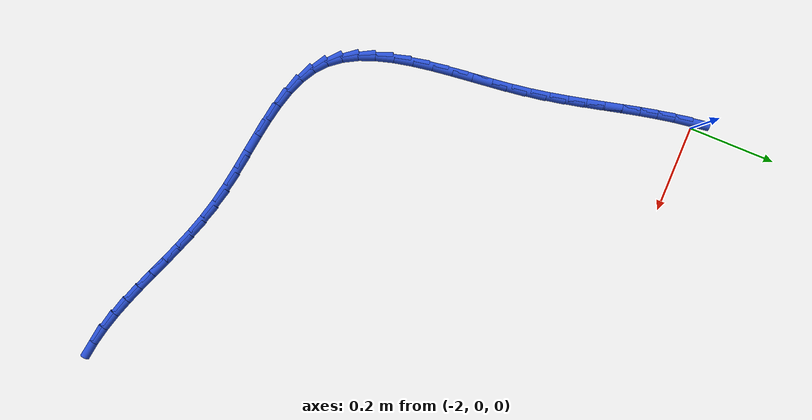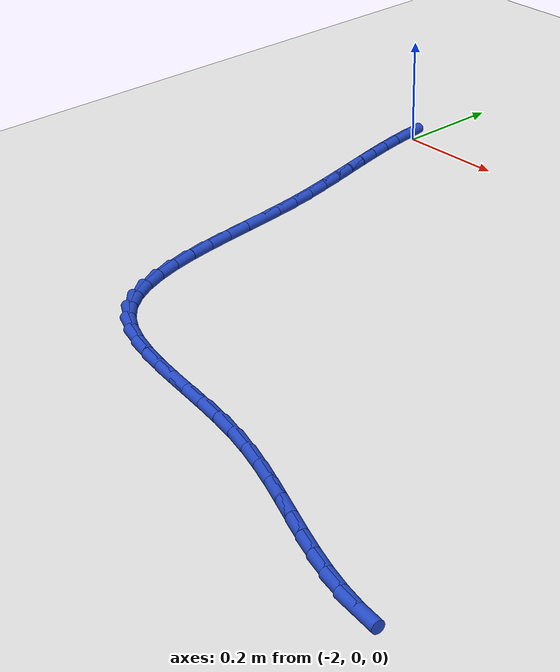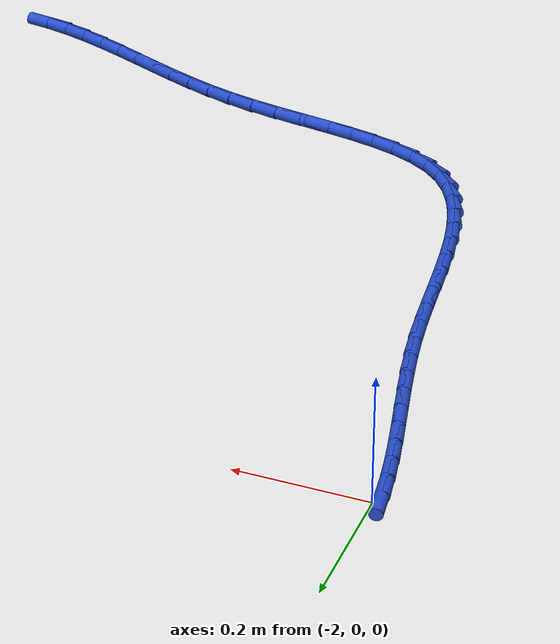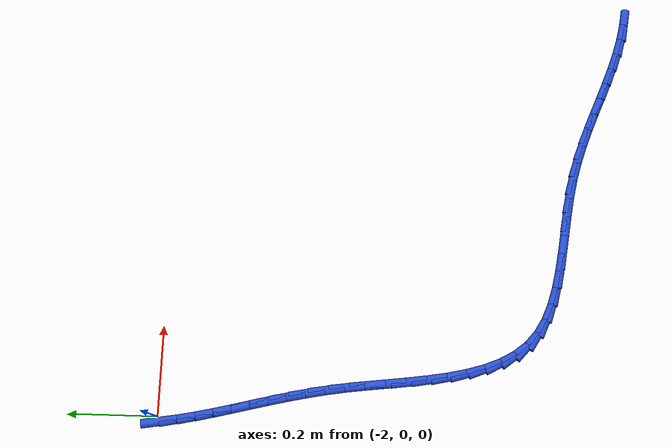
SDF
<sdf version="1.6">
 <world name="default">
  <model name="ground_plane">
   <static>1</static>
   <link name="link">
    <collision name="collision">
     <geometry><plane><normal>0 0 1</normal><size>100 100</size></plane></geometry>
     <surface><friction><ode><mu>100</mu><mu2>50</mu2></ode></friction></surface>
    </collision>
    <visual name="visual">
     <cast_shadows>0</cast_shadows>
     <geometry><plane><normal>0 0 1</normal><size>100 100</size></plane></geometry>
     <material>
      <script><uri>file://media/materials/scripts/gazebo.material</uri><name>Gazebo/WhiteGlow</name></script>
     </material>
    </visual>
   </link>
  </model>
  <model name="line">
   <link name="link_80">
    <pose>-2.0107670123664168 -0.005639571225354064 0.01 0 1.57 -1.4206485619733698</pose>
    <collision name="collision">
     <geometry><cylinder><radius>0.01</radius><length>0.08</length></cylinder></geometry>
    </collision>
    <visual name="visual">
     <material>
      <script><name>Gazebo/Blue</name><uri>file://media/materials/scripts/gazebo.material</uri></script>
     </material>
     <geometry><cylinder><radius>0.01</radius><length>0.08</length></cylinder></geometry>
    </visual>
   </link>
   <link name="link_81">
    <pose>-2.0048594719169923 -0.04468830233156936 0.01 0 1.57 -1.3846988196718093</pose>
    <collision name="collision">
     <geometry><cylinder><radius>0.01</radius><length>0.08</length></cylinder></geometry>
    </collision>
    <visual name="visual">
     <material>
      <script><name>Gazebo/Blue</name><uri>file://media/materials/scripts/gazebo.material</uri></script>
     </material>
     <geometry><cylinder><radius>0.01</radius><length>0.08</length></cylinder></geometry>
    </visual>
   </link>
   <link name="link_82">
    <pose>-1.997506854845853 -0.08374063173101816 0.01 0 1.57 -1.3582474626516305</pose>
    <collision name="collision">
     <geometry><cylinder><radius>0.01</radius><length>0.08</length></cylinder></geometry>
    </collision>
    <visual name="visual">
     <material>
      <script><name>Gazebo/Blue</name><uri>file://media/materials/scripts/gazebo.material</uri></script>
     </material>
     <geometry><cylinder><radius>0.01</radius><length>0.08</length></cylinder></geometry>
    </visual>
   </link>
   <link name="link_83">
    <pose>-1.989045722222081 -0.12294729131357554 0.01 0 1.57 -1.3412359398261178</pose>
    <collision name="collision">
     <geometry><cylinder><radius>0.01</radius><length>0.08</length></cylinder></geometry>
    </collision>
    <visual name="visual">
     <material>
      <script><name>Gazebo/Blue</name><uri>file://media/materials/scripts/gazebo.material</uri></script>
     </material>
     <geometry><cylinder><radius>0.01</radius><length>0.08</length></cylinder></geometry>
    </visual>
   </link>
   <link name="link_84">
    <pose>-1.9798126351147547 -0.16245901296911858 0.01 0 1.57 -1.333447600823755</pose>
    <collision name="collision">
     <geometry><cylinder><radius>0.01</radius><length>0.08</length></cylinder></geometry>
    </collision>
    <visual name="visual">
     <material>
      <script><name>Gazebo/Blue</name><uri>file://media/materials/scripts/gazebo.material</uri></script>
     </material>
     <geometry><cylinder><radius>0.01</radius><length>0.08</length></cylinder></geometry>
    </visual>
   </link>
   <link name="link_85">
    <pose>-1.9701441545929568 -0.2024265285875237 0.01 0 1.57 -1.3345629921398494</pose>
    <collision name="collision">
     <geometry><cylinder><radius>0.01</radius><length>0.08</length></cylinder></geometry>
    </collision>
    <visual name="visual">
     <material>
      <script><name>Gazebo/Blue</name><uri>file://media/materials/scripts/gazebo.material</uri></script>
     </material>
     <geometry><cylinder><radius>0.01</radius><length>0.08</length></cylinder></geometry>
    </visual>
   </link>
   <link name="link_86">
    <pose>-1.9603768417257665 -0.24300057005866732 0.01 0 1.57 -1.3441906305630849</pose>
    <collision name="collision">
     <geometry><cylinder><radius>0.01</radius><length>0.08</length></cylinder></geometry>
    </collision>
    <visual name="visual">
     <material>
      <script><name>Gazebo/Blue</name><uri>file://media/materials/scripts/gazebo.material</uri></script>
     </material>
     <geometry><cylinder><radius>0.01</radius><length>0.08</length></cylinder></geometry>
    </visual>
   </link>
   <link name="link_87">
    <pose>-1.9508472575822648 -0.2843318692724266 0.01 0 1.57 -1.3618765763833711</pose>
    <collision name="collision">
     <geometry><cylinder><radius>0.01</radius><length>0.08</length></cylinder></geometry>
    </collision>
    <visual name="visual">
     <material>
      <script><name>Gazebo/Blue</name><uri>file://media/materials/scripts/gazebo.material</uri></script>
     </material>
     <geometry><cylinder><radius>0.01</radius><length>0.08</length></cylinder></geometry>
    </visual>
   </link>
   <link name="link_88">
    <pose>-1.9418919632315321 -0.32657115811867643 0.01 0 1.57 -1.387098441997999</pose>
    <collision name="collision">
     <geometry><cylinder><radius>0.01</radius><length>0.08</length></cylinder></geometry>
    </collision>
    <visual name="visual">
     <material>
      <script><name>Gazebo/Blue</name><uri>file://media/materials/scripts/gazebo.material</uri></script>
     </material>
     <geometry><cylinder><radius>0.01</radius><length>0.08</length></cylinder></geometry>
    </visual>
   </link>
   <link name="link_89">
    <pose>-1.9338475197426486 -0.3698691684872939 0.01 0 1.57 -1.41861866611452</pose>
    <collision name="collision">
     <geometry><cylinder><radius>0.01</radius><length>0.08</length></cylinder></geometry>
    </collision>
    <visual name="visual">
     <material>
      <script><name>Gazebo/Blue</name><uri>file://media/materials/scripts/gazebo.material</uri></script>
     </material>
     <geometry><cylinder><radius>0.01</radius><length>0.08</length></cylinder></geometry>
    </visual>
   </link>
   <link name="link_90">
    <pose>-1.927024872825953 -0.4143559809340505 0.01 0 1.57 -1.4447960417823538</pose>
    <collision name="collision">
     <geometry><cylinder><radius>0.01</radius><length>0.08</length></cylinder></geometry>
    </collision>
    <visual name="visual">
     <material>
      <script><name>Gazebo/Blue</name><uri>file://media/materials/scripts/gazebo.material</uri></script>
     </material>
     <geometry><cylinder><radius>0.01</radius><length>0.08</length></cylinder></geometry>
    </visual>
   </link>
   <link name="link_91">
    <pose>-1.9212700799495133 -0.4597868789053292 0.01 0 1.57 -1.4567678985069266</pose>
    <collision name="collision">
     <geometry><cylinder><radius>0.01</radius><length>0.08</length></cylinder></geometry>
    </collision>
    <visual name="visual">
     <material>
      <script><name>Gazebo/Blue</name><uri>file://media/materials/scripts/gazebo.material</uri></script>
     </material>
     <geometry><cylinder><radius>0.01</radius><length>0.08</length></cylinder></geometry>
    </visual>
   </link>
   <link name="link_92">
    <pose>-1.9160243781152753 -0.505590775923028 0.01 0 1.57 -1.4548819404114641</pose>
    <collision name="collision">
     <geometry><cylinder><radius>0.01</radius><length>0.08</length></cylinder></geometry>
    </collision>
    <visual name="visual">
     <material>
      <script><name>Gazebo/Blue</name><uri>file://media/materials/scripts/gazebo.material</uri></script>
     </material>
     <geometry><cylinder><radius>0.01</radius><length>0.08</length></cylinder></geometry>
    </visual>
   </link>
   <link name="link_93">
    <pose>-1.9107154746549462 -0.5511856777664171 0.01 0 1.57 -1.438890836081887</pose>
    <collision name="collision">
     <geometry><cylinder><radius>0.01</radius><length>0.08</length></cylinder></geometry>
    </collision>
    <visual name="visual">
     <material>
      <script><name>Gazebo/Blue</name><uri>file://media/materials/scripts/gazebo.material</uri></script>
     </material>
     <geometry><cylinder><radius>0.01</radius><length>0.08</length></cylinder></geometry>
    </visual>
   </link>
   <link name="link_94">
    <pose>-1.904771076900235 -0.59598959021477 0.01 0 1.57 -1.4075817056264186</pose>
    <collision name="collision">
     <geometry><cylinder><radius>0.01</radius><length>0.08</length></cylinder></geometry>
    </collision>
    <visual name="visual">
     <material>
      <script><name>Gazebo/Blue</name><uri>file://media/materials/scripts/gazebo.material</uri></script>
     </material>
     <geometry><cylinder><radius>0.01</radius><length>0.08</length></cylinder></geometry>
    </visual>
   </link>
   <link name="link_95">
    <pose>-1.8976188921828507 -0.6394205190473593 0.01 0 1.57 -1.3586760163894525</pose>
    <collision name="collision">
     <geometry><cylinder><radius>0.01</radius><length>0.08</length></cylinder></geometry>
    </collision>
    <visual name="visual">
     <material>
      <script><name>Gazebo/Blue</name><uri>file://media/materials/scripts/gazebo.material</uri></script>
     </material>
     <geometry><cylinder><radius>0.01</radius><length>0.08</length></cylinder></geometry>
    </visual>
   </link>
   <link name="link_96">
    <pose>-1.8886866278345011 -0.6808964700434579 0.01 0 1.57 -1.2887205434735507</pose>
    <collision name="collision">
     <geometry><cylinder><radius>0.01</radius><length>0.08</length></cylinder></geometry>
    </collision>
    <visual name="visual">
     <material>
      <script><name>Gazebo/Blue</name><uri>file://media/materials/scripts/gazebo.material</uri></script>
     </material>
     <geometry><cylinder><radius>0.01</radius><length>0.08</length></cylinder></geometry>
    </visual>
   </link>
   <link name="link_97">
    <pose>-1.877401991186894 -0.7198354489823365 0.01 0 1.57 -1.1931500086723374</pose>
    <collision name="collision">
     <geometry><cylinder><radius>0.01</radius><length>0.08</length></cylinder></geometry>
    </collision>
    <visual name="visual">
     <material>
      <script><name>Gazebo/Blue</name><uri>file://media/materials/scripts/gazebo.material</uri></script>
     </material>
     <geometry><cylinder><radius>0.01</radius><length>0.08</length></cylinder></geometry>
    </visual>
   </link>
   <link name="link_98">
    <pose>-1.8631926895717388 -0.7556554616432686 0.01 0 1.57 -1.0669788447336652</pose>
    <collision name="collision">
     <geometry><cylinder><radius>0.01</radius><length>0.08</length></cylinder></geometry>
    </collision>
    <visual name="visual">
     <material>
      <script><name>Gazebo/Blue</name><uri>file://media/materials/scripts/gazebo.material</uri></script>
     </material>
     <geometry><cylinder><radius>0.01</radius><length>0.08</length></cylinder></geometry>
    </visual>
   </link>
   <link name="link_99">
    <pose>-1.8454864303207434 -0.7877745138055265 0.01 0 1.57 -0.9069565545761287</pose>
    <collision name="collision">
     <geometry><cylinder><radius>0.01</radius><length>0.08</length></cylinder></geometry>
    </collision>
    <visual name="visual">
     <material>
      <script><name>Gazebo/Blue</name><uri>file://media/materials/scripts/gazebo.material</uri></script>
     </material>
     <geometry><cylinder><radius>0.01</radius><length>0.08</length></cylinder></geometry>
    </visual>
   </link>
   <link name="link_100">
    <pose>-1.8237109207656166 -0.8156106112483829 0.01 0 1.57 -0.7166195439948762</pose>
    <collision name="collision">
     <geometry><cylinder><radius>0.01</radius><length>0.08</length></cylinder></geometry>
    </collision>
    <visual name="visual">
     <material>
      <script><name>Gazebo/Blue</name><uri>file://media/materials/scripts/gazebo.material</uri></script>
     </material>
     <geometry><cylinder><radius>0.01</radius><length>0.08</length></cylinder></geometry>
    </visual>
   </link>
   <link name="link_101">
    <pose>-1.7973145744335421 -0.8386045923910826 0.01 0 1.57 -0.5315540168078065</pose>
    <collision name="collision">
     <geometry><cylinder><radius>0.01</radius><length>0.08</length></cylinder></geometry>
    </collision>
    <visual name="visual">
     <material>
      <script><name>Gazebo/Blue</name><uri>file://media/materials/scripts/gazebo.material</uri></script>
     </material>
     <geometry><cylinder><radius>0.01</radius><length>0.08</length></cylinder></geometry>
    </visual>
   </link>
   <link name="link_102">
    <pose>-1.7663194930750692 -0.8568298993909788 0.01 0 1.57 -0.38674897903687844</pose>
    <collision name="collision">
     <geometry><cylinder><radius>0.01</radius><length>0.08</length></cylinder></geometry>
    </collision>
    <visual name="visual">
     <material>
      <script><name>Gazebo/Blue</name><uri>file://media/materials/scripts/gazebo.material</uri></script>
     </material>
     <geometry><cylinder><radius>0.01</radius><length>0.08</length></cylinder></geometry>
    </visual>
   </link>
   <link name="link_103">
    <pose>-1.7313814716630627 -0.8710587454188915 0.01 0 1.57 -0.28140955013392827</pose>
    <collision name="collision">
     <geometry><cylinder><radius>0.01</radius><length>0.08</length></cylinder></geometry>
    </collision>
    <visual name="visual">
     <material>
      <script><name>Gazebo/Blue</name><uri>file://media/materials/scripts/gazebo.material</uri></script>
     </material>
     <geometry><cylinder><radius>0.01</radius><length>0.08</length></cylinder></geometry>
    </visual>
   </link>
   <link name="link_104">
    <pose>-1.693189049607555 -0.8820994508071773 0.01 0 1.57 -0.20937952146520408</pose>
    <collision name="collision">
     <geometry><cylinder><radius>0.01</radius><length>0.08</length></cylinder></geometry>
    </collision>
    <visual name="visual">
     <material>
      <script><name>Gazebo/Blue</name><uri>file://media/materials/scripts/gazebo.material</uri></script>
     </material>
     <geometry><cylinder><radius>0.01</radius><length>0.08</length></cylinder></geometry>
    </visual>
   </link>
   <link name="link_105">
    <pose>-1.652430766318575 -0.8907603358881918 0.01 0 1.57 -0.16477099262160202</pose>
    <collision name="collision">
     <geometry><cylinder><radius>0.01</radius><length>0.08</length></cylinder></geometry>
    </collision>
    <visual name="visual">
     <material>
      <script><name>Gazebo/Blue</name><uri>file://media/materials/scripts/gazebo.material</uri></script>
     </material>
     <geometry><cylinder><radius>0.01</radius><length>0.08</length></cylinder></geometry>
    </visual>
   </link>
   <link name="link_106">
    <pose>-1.6097951612061536 -0.8978497209942917 0.01 0 1.57 -0.14336321528292298</pose>
    <collision name="collision">
     <geometry><cylinder><radius>0.01</radius><length>0.08</length></cylinder></geometry>
    </collision>
    <visual name="visual">
     <material>
      <script><name>Gazebo/Blue</name><uri>file://media/materials/scripts/gazebo.material</uri></script>
     </material>
     <geometry><cylinder><radius>0.01</radius><length>0.08</length></cylinder></geometry>
    </visual>
   </link>
   <link name="link_107">
    <pose>-1.5659707736803221 -0.9041759264578324 0.01 0 1.57 -0.1427648830915817</pose>
    <collision name="collision">
     <geometry><cylinder><radius>0.01</radius><length>0.08</length></cylinder></geometry>
    </collision>
    <visual name="visual">
     <material>
      <script><name>Gazebo/Blue</name><uri>file://media/materials/scripts/gazebo.material</uri></script>
     </material>
     <geometry><cylinder><radius>0.01</radius><length>0.08</length></cylinder></geometry>
    </visual>
   </link>
   <link name="link_108">
    <pose>-1.5216461431511106 -0.9105472726111701 0.01 0 1.57 -0.16225395336546491</pose>
    <collision name="collision">
     <geometry><cylinder><radius>0.01</radius><length>0.08</length></cylinder></geometry>
    </collision>
    <visual name="visual">
     <material>
      <script><name>Gazebo/Blue</name><uri>file://media/materials/scripts/gazebo.material</uri></script>
     </material>
     <geometry><cylinder><radius>0.01</radius><length>0.08</length></cylinder></geometry>
    </visual>
   </link>
   <link name="link_109">
    <pose>-1.4775098090285492 -0.917772079786661 0.01 0 1.57 -0.2026065003043917</pose>
    <collision name="collision">
     <geometry><cylinder><radius>0.01</radius><length>0.08</length></cylinder></geometry>
    </collision>
    <visual name="visual">
     <material>
      <script><name>Gazebo/Blue</name><uri>file://media/materials/scripts/gazebo.material</uri></script>
     </material>
     <geometry><cylinder><radius>0.01</radius><length>0.08</length></cylinder></geometry>
    </visual>
   </link>
   <link name="link_110">
    <pose>-1.434250309161136 -0.9266586660566439 0.01 0 1.57 -0.2595866897613341</pose>
    <collision name="collision">
     <geometry><cylinder><radius>0.01</radius><length>0.08</length></cylinder></geometry>
    </collision>
    <visual name="visual">
     <material>
      <script><name>Gazebo/Blue</name><uri>file://media/materials/scripts/gazebo.material</uri></script>
     </material>
     <geometry><cylinder><radius>0.01</radius><length>0.08</length></cylinder></geometry>
    </visual>
   </link>
   <link name="link_111">
    <pose>-1.3923906144067109 -0.9377757232358571 0.01 0 1.57 -0.31058217167955254</pose>
    <collision name="collision">
     <geometry><cylinder><radius>0.01</radius><length>0.08</length></cylinder></geometry>
    </collision>
    <visual name="visual">
     <material>
      <script><name>Gazebo/Blue</name><uri>file://media/materials/scripts/gazebo.material</uri></script>
     </material>
     <geometry><cylinder><radius>0.01</radius><length>0.08</length></cylinder></geometry>
    </visual>
   </link>
   <link name="link_112">
    <pose>-1.3518329297325797 -0.9507935043463484 0.01 0 1.57 -0.34910610895383554</pose>
    <collision name="collision">
     <geometry><cylinder><radius>0.01</radius><length>0.08</length></cylinder></geometry>
    </collision>
    <visual name="visual">
     <material>
      <script><name>Gazebo/Blue</name><uri>file://media/materials/scripts/gazebo.material</uri></script>
     </material>
     <geometry><cylinder><radius>0.01</radius><length>0.08</length></cylinder></geometry>
    </visual>
   </link>
   <link name="link_113">
    <pose>-1.3123340016124794 -0.9651717393203199 0.01 0 1.57 -0.37436404788107075</pose>
    <collision name="collision">
     <geometry><cylinder><radius>0.01</radius><length>0.08</length></cylinder></geometry>
    </collision>
    <visual name="visual">
     <material>
      <script><name>Gazebo/Blue</name><uri>file://media/materials/scripts/gazebo.material</uri></script>
     </material>
     <geometry><cylinder><radius>0.01</radius><length>0.08</length></cylinder></geometry>
    </visual>
   </link>
   <link name="link_114">
    <pose>-1.2736505765201482 -0.9803701580899749 0.01 0 1.57 -0.3857850869750242</pose>
    <collision name="collision">
     <geometry><cylinder><radius>0.01</radius><length>0.08</length></cylinder></geometry>
    </collision>
    <visual name="visual">
     <material>
      <script><name>Gazebo/Blue</name><uri>file://media/materials/scripts/gazebo.material</uri></script>
     </material>
     <geometry><cylinder><radius>0.01</radius><length>0.08</length></cylinder></geometry>
    </visual>
   </link>
   <link name="link_115">
    <pose>-1.235539400929324 -0.9958484905875157 0.01 0 1.57 -0.3829022198178344</pose>
    <collision name="collision">
     <geometry><cylinder><radius>0.01</radius><length>0.08</length></cylinder></geometry>
    </collision>
    <visual name="visual">
     <material>
      <script><name>Gazebo/Blue</name><uri>file://media/materials/scripts/gazebo.material</uri></script>
     </material>
     <geometry><cylinder><radius>0.01</radius><length>0.08</length></cylinder></geometry>
    </visual>
   </link>
   <link name="link_116">
    <pose>-1.1977572213137446 -1.0110664667451457 0.01 0 1.57 -0.36529416500311906</pose>
    <collision name="collision">
     <geometry><cylinder><radius>0.01</radius><length>0.08</length></cylinder></geometry>
    </collision>
    <visual name="visual">
     <material>
      <script><name>Gazebo/Blue</name><uri>file://media/materials/scripts/gazebo.material</uri></script>
     </material>
     <geometry><cylinder><radius>0.01</radius><length>0.08</length></cylinder></geometry>
    </visual>
   </link>
   <link name="link_117">
    <pose>-1.1600607841471493 -1.0254838164950668 0.01 0 1.57 -0.3326110722938064</pose>
    <collision name="collision">
     <geometry><cylinder><radius>0.01</radius><length>0.08</length></cylinder></geometry>
    </collision>
    <visual name="visual">
     <material>
      <script><name>Gazebo/Blue</name><uri>file://media/materials/scripts/gazebo.material</uri></script>
     </material>
     <geometry><cylinder><radius>0.01</radius><length>0.08</length></cylinder></geometry>
    </visual>
   </link>
   <link name="link_118">
    <pose>-1.1222068359032757 -1.0385602697694827 0.01 0 1.57 -0.28470119340687755</pose>
    <collision name="collision">
     <geometry><cylinder><radius>0.01</radius><length>0.08</length></cylinder></geometry>
    </collision>
    <visual name="visual">
     <material>
      <script><name>Gazebo/Blue</name><uri>file://media/materials/scripts/gazebo.material</uri></script>
     </material>
     <geometry><cylinder><radius>0.01</radius><length>0.08</length></cylinder></geometry>
    </visual>
   </link>
   <link name="link_119">
    <pose>-1.0839521230558617 -1.0497555565005954 0.01 0 1.57 -0.22184378271851682</pose>
    <collision name="collision">
     <geometry><cylinder><radius>0.01</radius><length>0.08</length></cylinder></geometry>
    </collision>
    <visual name="visual">
     <material>
      <script><name>Gazebo/Blue</name><uri>file://media/materials/scripts/gazebo.material</uri></script>
     </material>
     <geometry><cylinder><radius>0.01</radius><length>0.08</length></cylinder></geometry>
    </visual>
   </link>
   <link name="link_120">
    <pose>-1.0450533920786458 -1.058529406620608 0.01 0 1.57 -0.14586746303911302</pose>
    <collision name="collision">
     <geometry><cylinder><radius>0.01</radius><length>0.08</length></cylinder></geometry>
    </collision>
    <visual name="visual">
     <material>
      <script><name>Gazebo/Blue</name><uri>file://media/materials/scripts/gazebo.material</uri></script>
     </material>
     <geometry><cylinder><radius>0.01</radius><length>0.08</length></cylinder></geometry>
    </visual>
   </link>
  </model>
 </world>
</sdf>
